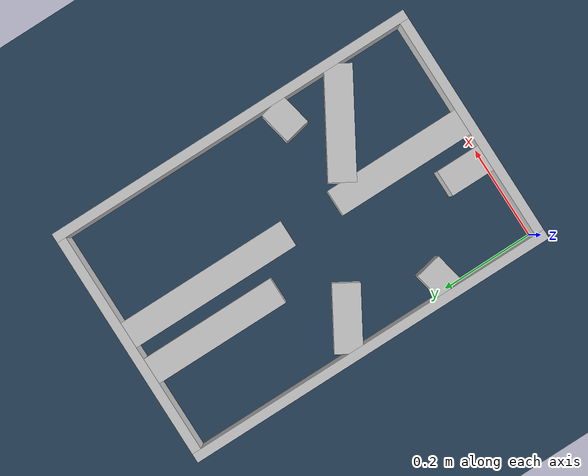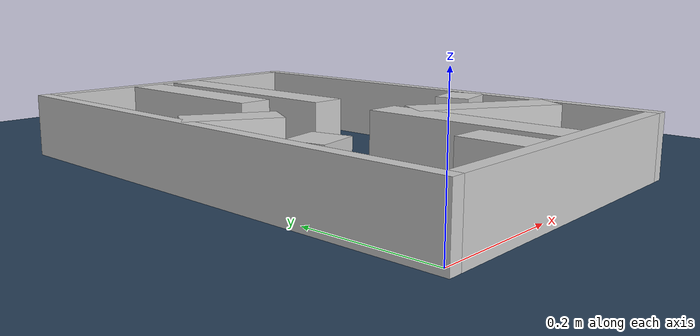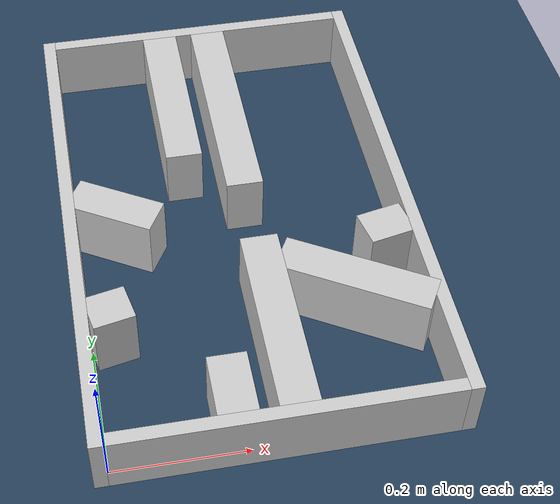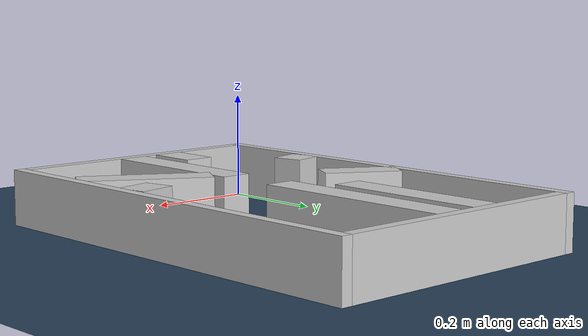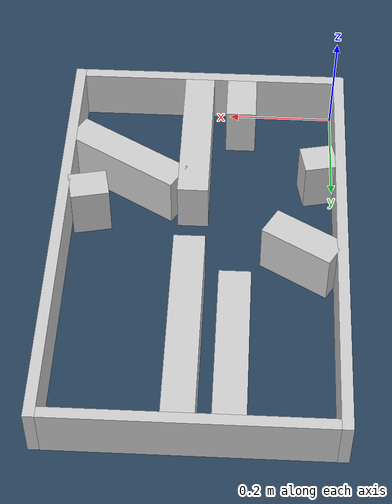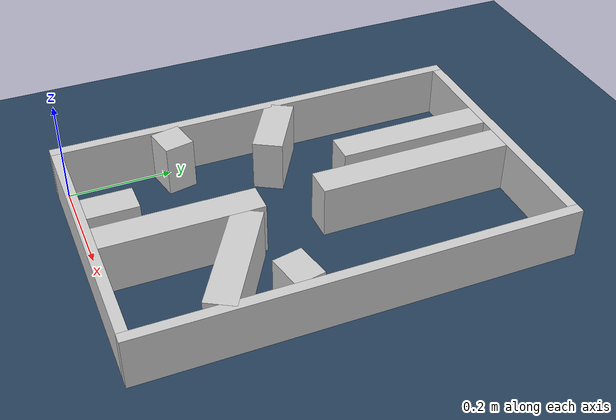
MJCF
<?xml version="1.0" ?>
<mujoco model="generated_real_template">
  <compiler angle="degree"/>
  <option timestep="0.002" integrator="implicitfast" iterations="100" cone="elliptic"/>
  <default>
    <geom density="1"/>
  </default>
  <asset>
    <texture builtin="gradient" height="3072" rgb1="0.3 0.5 0.7" rgb2="0 0 0" type="skybox" width="512"/>
    <texture builtin="checker" height="300" mark="edge" markrgb="0.8 0.8 0.8" name="groundplane" rgb1="0.2 0.3 0.4" rgb2="0.1 0.2 0.3" type="2d" width="300"/>
    <material name="groundplane" reflectance="0.2" texrepeat="5 5" texture="groundplane" texuniform="true"/>
  </asset>
  <worldbody>
    <light dir="0 0 -1" directional="true" pos="0 0 1.5"/>
    <geom name="floor" type="plane" condim="4" friction="0.5 0.005 0.001" material="groundplane" size="0 0 0.05"/>
    <body name="walls">
      <geom name="wall_boundary_left" type="box" condim="4" friction="1.0 0.005 0.0001" rgba="0.8 0.8 0.8 1" pos="-0.010000 0.387500 0.050000" euler="0 0 0.000000" size="0.010000 0.407500 0.050000"/>
      <geom name="wall_boundary_right" type="box" condim="4" friction="1.0 0.005 0.0001" rgba="0.8 0.8 0.8 1" pos="0.500000 0.387500 0.050000" euler="0 0 0.000000" size="0.010000 0.407500 0.050000"/>
      <geom name="wall_boundary_bottom" type="box" condim="4" friction="1.0 0.005 0.0001" rgba="0.8 0.8 0.8 1" pos="0.245000 -0.010000 0.050000" euler="0 0 0.000000" size="0.245000 0.010000 0.050000"/>
      <geom name="wall_boundary_top" type="box" condim="4" friction="1.0 0.005 0.0001" rgba="0.8 0.8 0.8 1" pos="0.245000 0.785000 0.050000" euler="0 0 0.000000" size="0.245000 0.010000 0.050000"/>
      <geom name="wall_inner_1_1" type="box" condim="4" friction="1.0 0.005 0.0001" rgba="0.8 0.8 0.8 1" pos="0.389618 0.202579 0.050000" euler="0 0 149.536587" size="0.116459 0.028500 0.050000"/>
      <geom name="wall_inner_1_2" type="box" condim="4" friction="1.0 0.005 0.0001" rgba="0.8 0.8 0.8 1" pos="0.060010 0.396450 0.050000" euler="0 0 149.536587" size="0.069621 0.028500 0.050000"/>
      <geom name="wall_inner_2_1" type="box" condim="4" friction="1.0 0.005 0.0001" rgba="0.8 0.8 0.8 1" pos="0.179246 0.047090 0.050000" euler="0 0 90.000000" size="0.047090 0.028500 0.050000"/>
      <geom name="wall_inner_2_2" type="box" condim="4" friction="1.0 0.005 0.0001" rgba="0.8 0.8 0.8 1" pos="0.179246 0.628152 0.050000" euler="0 0 90.000000" size="0.146848 0.028500 0.050000"/>
      <geom name="wall_inner_3_1" type="box" condim="4" friction="1.0 0.005 0.0001" rgba="0.8 0.8 0.8 1" pos="0.455240 0.288955 0.050000" euler="0 0 -168.478793" size="0.035475 0.028500 0.050000"/>
      <geom name="wall_inner_3_2" type="box" condim="4" friction="1.0 0.005 0.0001" rgba="0.8 0.8 0.8 1" pos="0.030560 0.202389 0.050000" euler="0 0 -168.478793" size="0.031189 0.028500 0.050000"/>
      <geom name="wall_inner_4_1" type="box" condim="4" friction="1.0 0.005 0.0001" rgba="0.8 0.8 0.8 1" pos="0.262500 0.147828 0.050000" euler="0 0 90.000000" size="0.147828 0.028500 0.050000"/>
      <geom name="wall_inner_4_2" type="box" condim="4" friction="1.0 0.005 0.0001" rgba="0.8 0.8 0.8 1" pos="0.262500 0.589612 0.050000" euler="0 0 90.000000" size="0.185388 0.028500 0.050000"/>
    </body>
  </worldbody>
</mujoco>
